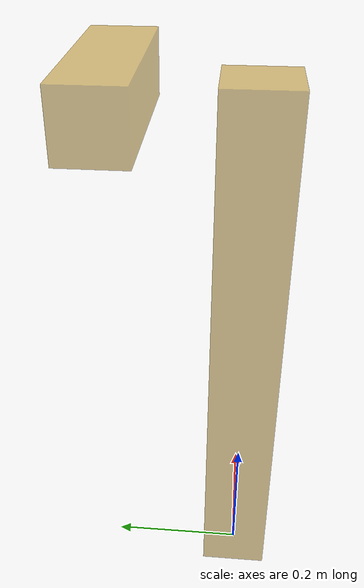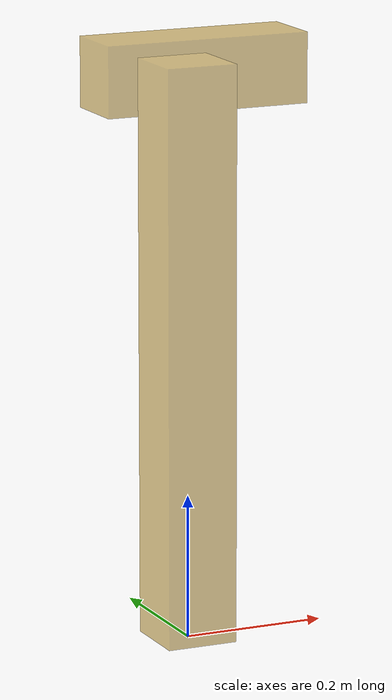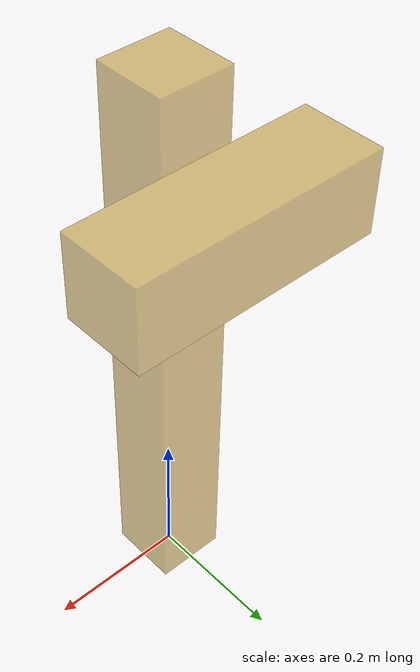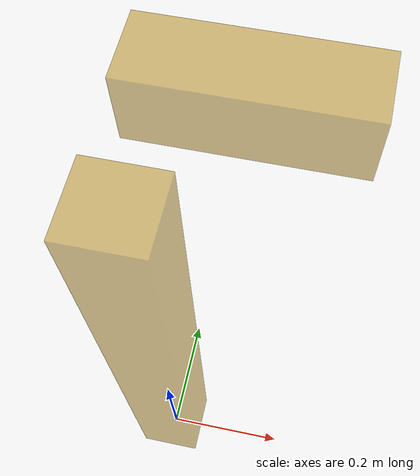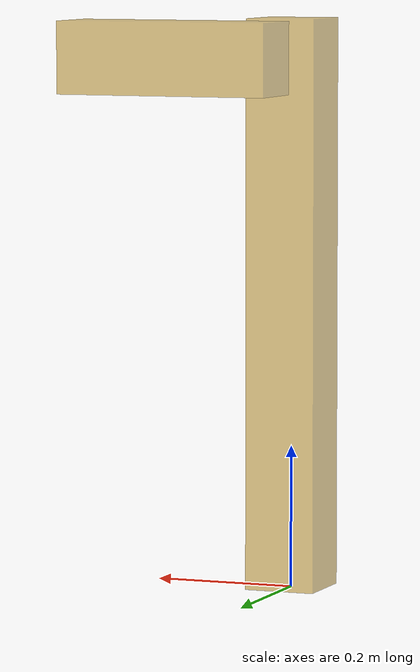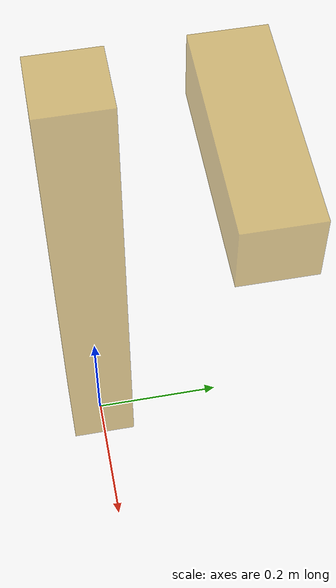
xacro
<!--two_link_linkage.urdf.xacro -->
<robot name="two_link_linkage" xmlns:xacro="http://www.ros.org/wiki/xacro">

    <xacro:arg name="namespace" default="" />

    <!-- Add namespace prefix for Gazebo plugin and transport -->
    <xacro:property name="ns_prefix" value="$(arg namespace)/" if="$(arg namespace)" />

    <!-- Fixed to the world -->
    <link name="world"/>
    <!-- Define a joint between world and base_link -->
    <joint name="${ns_prefix}fixed" type="fixed">
        <parent link="world"/>
        <child link="${ns_prefix}base_link"/>
    </joint>
    <!-- 固定的link -->
    <link name="${ns_prefix}base_link">
        <visual>
            <geometry>
            <!-- 长方体的长宽高 -->
            <!-- 圆柱的半径和长度 -->
            <!-- 球体的半径-->
                <box size="0.1 0.1 0.8"/>
            </geometry>
            <!-- 位置：x y z 轴位置 roll pitch yaw 旋转 -->
            <origin xyz="0.0 0.0 0.4" rpy="0.0 0.0 0.0"/>
            <!-- rgba颜色 -->
            <material name="black">
                <color rgba="0.7 0.5 0 0.5" />
            </material>
        </visual>
        <collision>
            <origin xyz="0.0 0.0 0.4" rpy="0 0 0"/>
            <geometry>
                <box size="0.1 0.1 0.8"/>
            </geometry>
        </collision>
        <!-- 惯量矩阵 -->
        <inertial>
            <origin xyz="0.0 0.0 0.4" rpy="0 0 0"/>
            <mass value="0.5"/>
            <inertia
                    ixx="0.027083333" ixy="0.0" ixz="0.0"
                    iyy="0.027083333" iyz="0.0"
                    izz="0.000833333"/>
        </inertial>
    </link>

    <!-- 二连杆的关节 -->
    <joint name="${ns_prefix}joint1" type="revolute">
        <axis xyz="0 1 0"/> <!-- 定义旋转轴为 y轴 -->
        <!-- 常见设置包括：
            xyz="1 0 0" 表示关节绕x轴旋转
            xyz="0 1 0" 表示关节绕y轴旋转
            xyz="0 0 1" 表示关节绕z轴旋转
        -->
        <origin xyz="0 0.1 0.75" rpy="0 1.57 0"/>
        <!--      limit not work while type="continuous"-->
        <limit effort="5." velocity="50." lower="-3.14" upper="3.14"/>
        <dynamics damping="0.01" friction="0.02"/>
        <parent link="${ns_prefix}base_link"/>
        <child link="${ns_prefix}rotating_link"/>
    </joint>

    <!-- 旋转link -->
    <link name="${ns_prefix}rotating_link">
        <visual>
            <geometry>
                <box size="0.1 0.1 0.3"/>
            </geometry>
            <!-- 位置：x y z 轴位置 roll pitch yaw 旋转 -->
            <origin xyz="0.0 0.1 0.1" rpy="0.0 0.0 0.0"/>
            <material name="black">
                <color rgba="0.7 0.5 0 0.5" />
            </material>
        </visual>
        <collision>
            <origin xyz="0.0 0.1 0.1" rpy="0 0 0"/>
            <geometry>
                <box size="0.1 0.1 0.3"/>
            </geometry>
        </collision>
        <!-- 惯量矩阵 -->
        <inertial>
            <origin xyz="0.0 0.1 0.1" rpy="0 0 0"/>
            <mass value="0.5"/>
            <inertia
                    ixx="0.004166667" ixy="0.0" ixz="0.0"
                    iyy="0.004166667" iyz="0.0"
                    izz="0.000833333"/>
        </inertial>
    </link>

    <transmission name="${ns_prefix}joint1_tran">
            <type>transmission_interface/SimpleTransmission</type>
            <joint name="${ns_prefix}joint1">
                <hardwareInterface>hardware_interface/EffortJointInterface</hardwareInterface>
            </joint>
            <actuator name="${ns_prefix}joint1_motor">
                <hardwareInterface>hardware_interface/EffortJointInterface</hardwareInterface>
                <mechanicalReduction>19.2032</mechanicalReduction>
            </actuator>
    </transmission>
    <!-- plugin the gazebo_ros_control pluginlib -->
    <gazebo>
        <plugin name="gazebo_ros_control" filename="libgazebo_ros_control.so">
            <robotNamespace>$(arg namespace)</robotNamespace>
        </plugin>
    </gazebo>

</robot>
